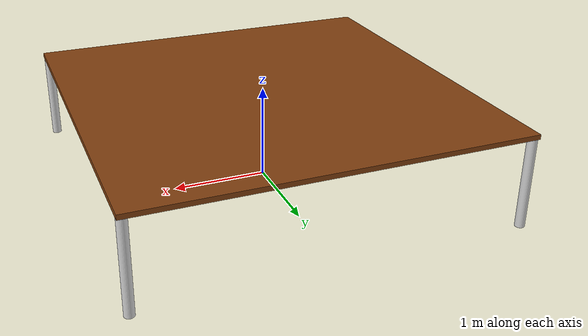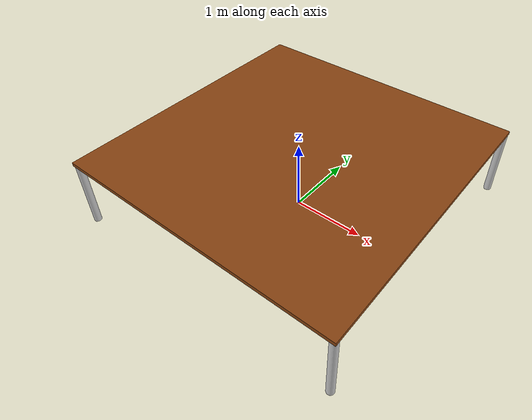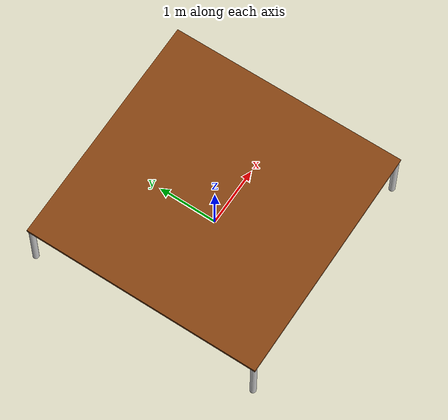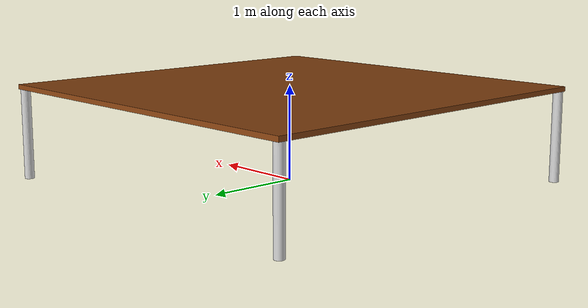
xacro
<?xml version="1.0" encoding="UTF-8"?>
<robot xmlns:xacro="http://www.ros.org/wiki/xacro" name="table_robot">

  <!-- Materialien definieren -->
  <material name="brown">
    <color rgba="0.59 0.29 0.0 1.0"/>
  </material>
  <material name="light_grey">
    <color rgba="0.8 0.8 0.8 1.0"/>
  </material>
  <!-- Include the table macro file -->
  <xacro:include filename="table_macro.xacro" />

  <!-- Dummy root link so the table can be spawned in RViz/Gazebo -->
  <link name="world"/>

  <!-- Instantiate the table macro, attached to the world frame at origin z=0 -->
  <xacro:table prefix="" parent="world">
    <origin xyz="0 0 1" rpy="0 0 0" />
  </xacro:table>

</robot>

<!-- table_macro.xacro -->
<robot xmlns:xacro="http://www.ros.org/wiki/xacro">

  <xacro:macro name="table" params="prefix parent *origin">

    <!-- Constants for robot dimensions -->
    <xacro:property name="table_length" value="4" />
    <xacro:property name="table_width" value="4" />
    <xacro:property name="table_height" value="1" />
    <xacro:property name="table_thickness" value="0.05" />
    <!-- Gefixt: $ hinzugefügt -->
    <xacro:property name="leg_length" value="${table_height - table_thickness}" />
    <xacro:property name="leg_radius" value="0.05" />

    <!-- Offset from the edge of the table top to the center of each leg, ensuring they stay tangent -->
    <xacro:property name="leg_x_offset" value="${table_length / 2 - leg_radius}" />
    <xacro:property name="leg_y_offset" value="${table_width / 2 - leg_radius}" />

    <!-- Base Joint linking to parent -->
    <joint name="${prefix}table_base_joint" type="fixed">
      <xacro:insert_block name="origin" />
      <parent link="${parent}" />
      <child link="${prefix}top" />
    </joint>

    <!-- Table Top Link -->
    <link name="${prefix}top">
      <visual>
        <origin xyz="0 0 ${-table_thickness/2}" rpy="0 0 0" />
        <geometry>
          <box size="${table_length} ${table_width} ${table_thickness}" />
        </geometry>
        <material name="brown">
          <color rgba="0.54 0.27 0.07 1.0" />
        </material>
      </visual>
    </link>

    <!-- Macro for Table Legs -->
    <xacro:macro name="table_leg" params="suffix x_dir y_dir">
      <joint name="${prefix}leg_${suffix}_joint" type="fixed">
        <parent link="${prefix}top" />
        <child link="${prefix}leg_${suffix}_link" />
        <!-- Gefixt: Joint liegt direkt unter der Tischplatte -->
        <origin xyz="${x_dir * leg_x_offset} ${y_dir * leg_y_offset} ${-table_thickness}" rpy="0 0 0" />
      </joint>

      <link name="${prefix}leg_${suffix}_link">
        <visual>
          <!-- Gefixt: -leg_length/2 damit das Bein von der Platte nach unten zum Boden (z=0) verläuft -->
          <origin xyz="0 0 ${-leg_length / 2}" rpy="0 0 0" />
          <geometry>
            <cylinder radius="${leg_radius}" length="${leg_length}" />
          </geometry>
          <material name="light_grey">
            <color rgba="0.8 0.8 0.8 1.0" />
          </material>
        </visual>
      </link>
    </xacro:macro>

    <!-- Instantiate the four legs -->
    <xacro:table_leg suffix="1"  x_dir="1"  y_dir="1" />
    <xacro:table_leg suffix="2" x_dir="1"  y_dir="-1" />
    <xacro:table_leg suffix="3"   x_dir="-1" y_dir="1" />
    <xacro:table_leg suffix="4"  x_dir="-1" y_dir="-1" />

  </xacro:macro>

</robot>
